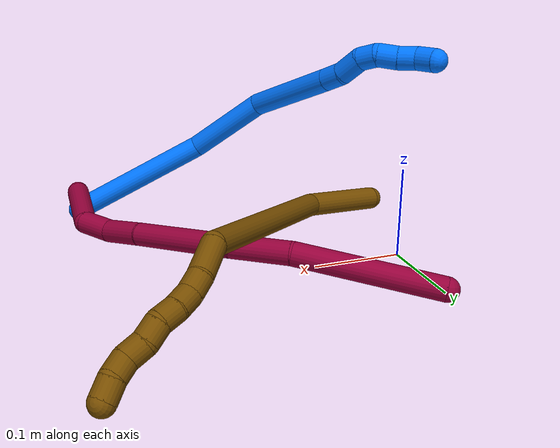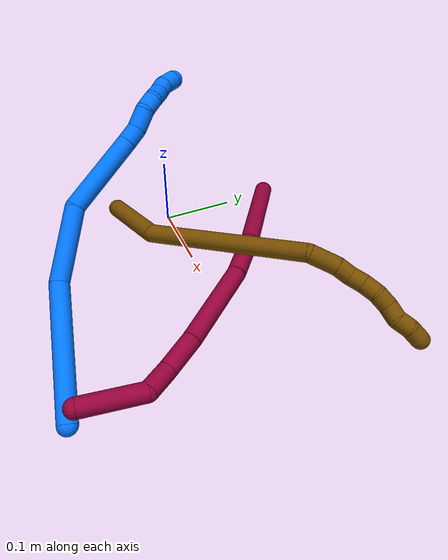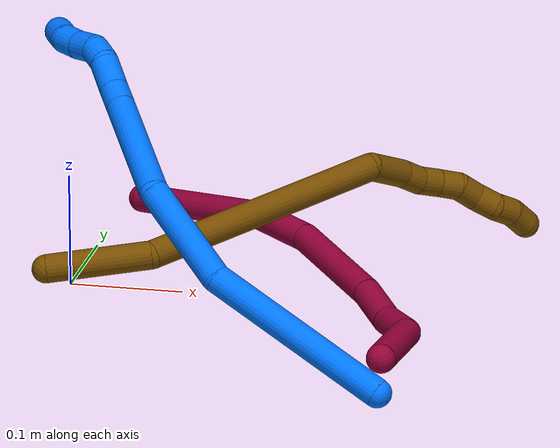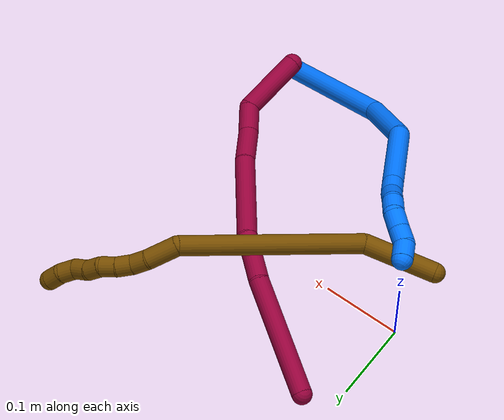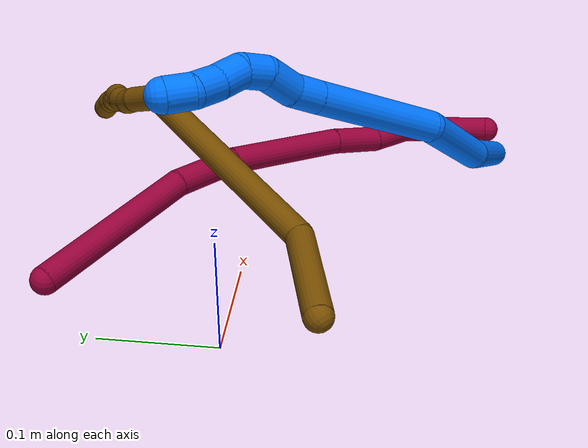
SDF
<sdf version="1.7">
 <world name="default">
  <model name="photoneo_s_sensor">
   <static>1</static>
   <pose>0 0 2 1.57079 1.57079 3.14159</pose>
   <link name="link">
    <inertial><mass>0.1</mass></inertial>
    <sensor name="sensor" type="depth">
     <update_rate>30</update_rate>
     <camera>
      <horizontal_fov>1.22</horizontal_fov>
      <image><width>1920</width><height>1200</height><format>B8G8R8</format></image>
      <clip><near>0.1</near><far>4</far></clip>
      <depth_camera><output>points</output></depth_camera>
     </camera>
     <plugin name="camera_plugin" filename="libgazebo_ros_depth_camera.so">
      <baseline>0.2</baseline>
      <alwaysOn>1</alwaysOn>
      <updateRate>0.0</updateRate>
      <cameraName>camera_ir</cameraName>
      <imageTopicName>/camera/color/image_raw</imageTopicName>
      <cameraInfoTopicName>/camera/color/camera_info</cameraInfoTopicName>
      <depthImageTopicName>/camera/depth/image_raw</depthImageTopicName>
      <depthImageCameraInfoTopicName>/camera/depth/camera_info</depthImageCameraInfoTopicName>
      <pointCloudTopicName>/camera/depth/points</pointCloudTopicName>
      <frameName>fr_optical</frameName>
      <pointCloudCutoff>0.1</pointCloudCutoff>
      <pointCloudCutoffMax>2.0</pointCloudCutoffMax>
      <distortionK1>0</distortionK1>
      <distortionK2>0</distortionK2>
      <distortionK3>0</distortionK3>
      <distortionT1>0</distortionT1>
      <distortionT2>0</distortionT2>
      <CxPrime>0</CxPrime>
      <Cx>0</Cx>
      <Cy>0</Cy>
      <focalLength>0</focalLength>
      <hackBaseline>0</hackBaseline>
     </plugin>
    </sensor>
   </link>
  </model>
  <model name="bin">
   <static>1</static>
   <link name="bottom">
    <collision name="collision-bottom">
     <pose>0 0 -0.01 0 -0 0</pose>
     <geometry><box><size>0.8 0.6 0.02</size></box></geometry>
     <surface>
      <friction><ode><mu>100</mu><mu2>100</mu2></ode></friction>
      <contact><collide_bitmask>65535</collide_bitmask></contact>
     </surface>
    </collision>
   </link>
   <link name="west_wall">
    <collision name="collision-west_wall">
     <pose>-0.41 0 0.1 0 -0 0</pose>
     <geometry><box><size>0.02 0.6 0.2</size></box></geometry>
     <surface>
      <friction><ode><mu>100</mu><mu2>100</mu2></ode></friction>
      <contact><collide_bitmask>65535</collide_bitmask></contact>
     </surface>
    </collision>
   </link>
   <link name="east_wall">
    <collision name="collision-east_wall">
     <pose>0.41 0 0.1 0 -0 0</pose>
     <geometry><box><size>0.02 0.6 0.2</size></box></geometry>
     <surface>
      <friction><ode><mu>100</mu><mu2>100</mu2></ode></friction>
      <contact><collide_bitmask>65535</collide_bitmask></contact>
     </surface>
    </collision>
   </link>
   <link name="south_wall">
    <collision name="collision-south_wall">
     <pose>0 -0.31 0.1 0 -0 0</pose>
     <geometry><box><size>0.8 0.02 0.2</size></box></geometry>
     <surface>
      <friction><ode><mu>100</mu><mu2>100</mu2></ode></friction>
      <contact><collide_bitmask>65535</collide_bitmask></contact>
     </surface>
    </collision>
   </link>
   <link name="north_wall">
    <collision name="collision-north_wall">
     <pose>0 0.31 0.1 0 -0 0</pose>
     <geometry><box><size>0.8 0.02 0.2</size></box></geometry>
     <surface>
      <friction><ode><mu>100</mu><mu2>100</mu2></ode></friction>
      <contact><collide_bitmask>65535</collide_bitmask></contact>
     </surface>
    </collision>
   </link>
  </model>
  <model name="8">
   <static>0</static>
   <link name="8">
    <collision name="collision-cylinder-e_1_1_4">
     <pose>0.013889 0.036596 -0.012509 -1.90015 0.344769 -0.477732</pose>
     <geometry><cylinder><radius>0.0125</radius><length>0.082186</length></cylinder></geometry>
     <surface>
      <friction><ode><mu>1.16</mu><mu2>1.16</mu2><slip1>0</slip1><slip2>0</slip2></ode></friction>
      <contact><ode><kp>1e+06</kp><kd>1</kd><max_vel>0</max_vel><min_depth>0.001</min_depth></ode></contact>
     </surface>
    </collision>
    <visual name="visual-cylinder-e_1_1_4">
     <pose>0.013889 0.036596 -0.012509 -1.90015 0.344769 -0.477732</pose>
     <geometry><cylinder><radius>0.0125</radius><length>0.082186</length></cylinder></geometry>
     <material><ambient>0.584314 0 0.227451 1</ambient></material>
    </visual>
    <collision name="collision-cylinder-e_2_4_5">
     <pose>0.022009 0.091104 -0.026834 -1.67186 -0.310053 0.342473</pose>
     <geometry><cylinder><radius>0.0125</radius><length>0.037811</length></cylinder></geometry>
     <surface>
      <friction><ode><mu>1.16</mu><mu2>1.16</mu2><slip1>0</slip1><slip2>0</slip2></ode></friction>
      <contact><ode><kp>1e+06</kp><kd>1</kd><max_vel>0</max_vel><min_depth>0.001</min_depth></ode></contact>
     </surface>
    </collision>
    <visual name="visual-cylinder-e_2_4_5">
     <pose>0.022009 0.091104 -0.026834 -1.67186 -0.310053 0.342473</pose>
     <geometry><cylinder><radius>0.0125</radius><length>0.037811</length></cylinder></geometry>
     <material><ambient>0.584314 0 0.227451 1</ambient></material>
    </visual>
    <collision name="collision-cylinder-e_3_5_6">
     <pose>0.011685 0.132447 -0.026312 -1.4713 -0.191104 0.173072</pose>
     <geometry><cylinder><radius>0.0125</radius><length>0.047968</length></cylinder></geometry>
     <surface>
      <friction><ode><mu>1.16</mu><mu2>1.16</mu2><slip1>0</slip1><slip2>0</slip2></ode></friction>
      <contact><ode><kp>1e+06</kp><kd>1</kd><max_vel>0</max_vel><min_depth>0.001</min_depth></ode></contact>
     </surface>
    </collision>
    <visual name="visual-cylinder-e_3_5_6">
     <pose>0.011685 0.132447 -0.026312 -1.4713 -0.191104 0.173072</pose>
     <geometry><cylinder><radius>0.0125</radius><length>0.047968</length></cylinder></geometry>
     <material><ambient>0.584314 0 0.227451 1</ambient></material>
    </visual>
    <collision name="collision-cylinder-e_4_6_7">
     <pose>-0.011047 0.210823 -0.020133 -1.50102 -0.318755 0.297582</pose>
     <geometry><cylinder><radius>0.0125</radius><length>0.116</length></cylinder></geometry>
     <surface>
      <friction><ode><mu>1.16</mu><mu2>1.16</mu2><slip1>0</slip1><slip2>0</slip2></ode></friction>
      <contact><ode><kp>1e+06</kp><kd>1</kd><max_vel>0</max_vel><min_depth>0.001</min_depth></ode></contact>
     </surface>
    </collision>
    <visual name="visual-cylinder-e_4_6_7">
     <pose>-0.011047 0.210823 -0.020133 -1.50102 -0.318755 0.297582</pose>
     <geometry><cylinder><radius>0.0125</radius><length>0.116</length></cylinder></geometry>
     <material><ambient>0.584314 0 0.227451 1</ambient></material>
    </visual>
    <collision name="collision-cylinder-e_5_7_8">
     <pose>-0.045552 0.29372 -0.014613 -1.5108 -0.52789 0.498424</pose>
     <geometry><cylinder><radius>0.0125</radius><length>0.064833</length></cylinder></geometry>
     <surface>
      <friction><ode><mu>1.16</mu><mu2>1.16</mu2><slip1>0</slip1><slip2>0</slip2></ode></friction>
      <contact><ode><kp>1e+06</kp><kd>1</kd><max_vel>0</max_vel><min_depth>0.001</min_depth></ode></contact>
     </surface>
    </collision>
    <visual name="visual-cylinder-e_5_7_8">
     <pose>-0.045552 0.29372 -0.014613 -1.5108 -0.52789 0.498424</pose>
     <geometry><cylinder><radius>0.0125</radius><length>0.064833</length></cylinder></geometry>
     <material><ambient>0.584314 0 0.227451 1</ambient></material>
    </visual>
    <collision name="collision-cylinder-e_6_8_2">
     <pose>-0.110083 0.37958 -0.01917 -1.67806 -0.691373 0.762756</pose>
     <geometry><cylinder><radius>0.0125</radius><length>0.151202</length></cylinder></geometry>
     <surface>
      <friction><ode><mu>1.16</mu><mu2>1.16</mu2><slip1>0</slip1><slip2>0</slip2></ode></friction>
      <contact><ode><kp>1e+06</kp><kd>1</kd><max_vel>0</max_vel><min_depth>0.001</min_depth></ode></contact>
     </surface>
    </collision>
    <visual name="visual-cylinder-e_6_8_2">
     <pose>-0.110083 0.37958 -0.01917 -1.67806 -0.691373 0.762756</pose>
     <geometry><cylinder><radius>0.0125</radius><length>0.151202</length></cylinder></geometry>
     <material><ambient>0.584314 0 0.227451 1</ambient></material>
    </visual>
    <collision name="collision-sphere-2">
     <pose>-0.158286 0.437486 -0.025405 0 -0 0</pose>
     <geometry><sphere><radius>0.0125</radius></sphere></geometry>
     <surface>
      <friction><ode><mu>1.16</mu><mu2>1.16</mu2><slip1>0</slip1><slip2>0</slip2></ode></friction>
      <contact><ode><kp>1e+06</kp><kd>1</kd><max_vel>0</max_vel><min_depth>0.001</min_depth></ode></contact>
     </surface>
    </collision>
    <visual name="visual-sphere-2">
     <pose>-0.158286 0.437486 -0.025405 0 -0 0</pose>
     <geometry><sphere><radius>0.0125</radius></sphere></geometry>
     <material><ambient>0.584314 0 0.227451 1</ambient></material>
    </visual>
    <collision name="collision-sphere-4">
     <pose>0.027777 0.073192 -0.025018 0 -0 0</pose>
     <geometry><sphere><radius>0.0125</radius></sphere></geometry>
     <surface>
      <friction><ode><mu>1.16</mu><mu2>1.16</mu2><slip1>0</slip1><slip2>0</slip2></ode></friction>
      <contact><ode><kp>1e+06</kp><kd>1</kd><max_vel>0</max_vel><min_depth>0.001</min_depth></ode></contact>
     </surface>
    </collision>
    <visual name="visual-sphere-4">
     <pose>0.027777 0.073192 -0.025018 0 -0 0</pose>
     <geometry><sphere><radius>0.0125</radius></sphere></geometry>
     <material><ambient>0.584314 0 0.227451 1</ambient></material>
    </visual>
    <collision name="collision-sphere-1">
     <geometry><sphere><radius>0.0125</radius></sphere></geometry>
     <surface>
      <friction><ode><mu>1.16</mu><mu2>1.16</mu2><slip1>0</slip1><slip2>0</slip2></ode></friction>
      <contact><ode><kp>1e+06</kp><kd>1</kd><max_vel>0</max_vel><min_depth>0.001</min_depth></ode></contact>
     </surface>
    </collision>
    <visual name="visual-sphere-1">
     <geometry><sphere><radius>0.0125</radius></sphere></geometry>
     <material><ambient>0.584314 0 0.227451 1</ambient></material>
    </visual>
    <collision name="collision-sphere-8">
     <pose>-0.06188 0.321674 -0.012934 0 -0 0</pose>
     <geometry><sphere><radius>0.0125</radius></sphere></geometry>
     <surface>
      <friction><ode><mu>1.16</mu><mu2>1.16</mu2><slip1>0</slip1><slip2>0</slip2></ode></friction>
      <contact><ode><kp>1e+06</kp><kd>1</kd><max_vel>0</max_vel><min_depth>0.001</min_depth></ode></contact>
     </surface>
    </collision>
    <visual name="visual-sphere-8">
     <pose>-0.06188 0.321674 -0.012934 0 -0 0</pose>
     <geometry><sphere><radius>0.0125</radius></sphere></geometry>
     <material><ambient>0.584314 0 0.227451 1</ambient></material>
    </visual>
    <collision name="collision-sphere-5">
     <pose>0.016241 0.109016 -0.02865 0 -0 0</pose>
     <geometry><sphere><radius>0.0125</radius></sphere></geometry>
     <surface>
      <friction><ode><mu>1.16</mu><mu2>1.16</mu2><slip1>0</slip1><slip2>0</slip2></ode></friction>
      <contact><ode><kp>1e+06</kp><kd>1</kd><max_vel>0</max_vel><min_depth>0.001</min_depth></ode></contact>
     </surface>
    </collision>
    <visual name="visual-sphere-5">
     <pose>0.016241 0.109016 -0.02865 0 -0 0</pose>
     <geometry><sphere><radius>0.0125</radius></sphere></geometry>
     <material><ambient>0.584314 0 0.227451 1</ambient></material>
    </visual>
    <collision name="collision-sphere-6">
     <pose>0.00713 0.155878 -0.023973 0 -0 0</pose>
     <geometry><sphere><radius>0.0125</radius></sphere></geometry>
     <surface>
      <friction><ode><mu>1.16</mu><mu2>1.16</mu2><slip1>0</slip1><slip2>0</slip2></ode></friction>
      <contact><ode><kp>1e+06</kp><kd>1</kd><max_vel>0</max_vel><min_depth>0.001</min_depth></ode></contact>
     </surface>
    </collision>
    <visual name="visual-sphere-6">
     <pose>0.00713 0.155878 -0.023973 0 -0 0</pose>
     <geometry><sphere><radius>0.0125</radius></sphere></geometry>
     <material><ambient>0.584314 0 0.227451 1</ambient></material>
    </visual>
    <collision name="collision-sphere-7">
     <pose>-0.029223 0.265767 -0.016293 0 -0 0</pose>
     <geometry><sphere><radius>0.0125</radius></sphere></geometry>
     <surface>
      <friction><ode><mu>1.16</mu><mu2>1.16</mu2><slip1>0</slip1><slip2>0</slip2></ode></friction>
      <contact><ode><kp>1e+06</kp><kd>1</kd><max_vel>0</max_vel><min_depth>0.001</min_depth></ode></contact>
     </surface>
    </collision>
    <visual name="visual-sphere-7">
     <pose>-0.029223 0.265767 -0.016293 0 -0 0</pose>
     <geometry><sphere><radius>0.0125</radius></sphere></geometry>
     <material><ambient>0.584314 0 0.227451 1</ambient></material>
    </visual>
    <inertial>
     <pose>-0.03669 0.227394 -0.018972 0 -0 0</pose>
     <mass>0.5</mass>
     <inertia>
      <ixx>0.000537</ixx>
      <ixy>0</ixy>
      <ixz>0</ixz>
      <iyy>0.00035</iyy>
      <iyz>0</iyz>
      <izz>-0.000207</izz>
     </inertia>
    </inertial>
   </link>
   <pose>0.317647 -0.219394 0.037915 0.135093 -0.254471 0.309386</pose>
  </model>
  <model name="12">
   <static>0</static>
   <link name="12">
    <collision name="collision-cylinder-e_1_1_4">
     <pose>0.028012 -0.000279 0.03624 0.007696 0.658019 0.002628</pose>
     <geometry><cylinder><radius>0.0125</radius><length>0.091609</length></cylinder></geometry>
     <surface>
      <friction><ode><mu>1.16</mu><mu2>1.16</mu2><slip1>0</slip1><slip2>0</slip2></ode></friction>
      <contact><ode><kp>1e+06</kp><kd>1</kd><max_vel>0</max_vel><min_depth>0.001</min_depth></ode></contact>
     </surface>
    </collision>
    <visual name="visual-cylinder-e_1_1_4">
     <pose>0.028012 -0.000279 0.03624 0.007696 0.658019 0.002628</pose>
     <geometry><cylinder><radius>0.0125</radius><length>0.091609</length></cylinder></geometry>
     <material><ambient>0.466667 0.301961 0 1</ambient></material>
    </visual>
    <collision name="collision-cylinder-e_2_4_5">
     <pose>0.082489 0.031362 0.178892 -0.291426 0.233856 -0.034473</pose>
     <geometry><cylinder><radius>0.0125</radius><length>0.228412</length></cylinder></geometry>
     <surface>
      <friction><ode><mu>1.16</mu><mu2>1.16</mu2><slip1>0</slip1><slip2>0</slip2></ode></friction>
      <contact><ode><kp>1e+06</kp><kd>1</kd><max_vel>0</max_vel><min_depth>0.001</min_depth></ode></contact>
     </surface>
    </collision>
    <visual name="visual-cylinder-e_2_4_5">
     <pose>0.082489 0.031362 0.178892 -0.291426 0.233856 -0.034473</pose>
     <geometry><cylinder><radius>0.0125</radius><length>0.228412</length></cylinder></geometry>
     <material><ambient>0.466667 0.301961 0 1</ambient></material>
    </visual>
    <collision name="collision-cylinder-e_3_5_6">
     <pose>0.115857 0.077706 0.297211 -0.880752 0.353616 -0.168</pose>
     <geometry><cylinder><radius>0.0125</radius><length>0.039872</length></cylinder></geometry>
     <surface>
      <friction><ode><mu>1.16</mu><mu2>1.16</mu2><slip1>0</slip1><slip2>0</slip2></ode></friction>
      <contact><ode><kp>1e+06</kp><kd>1</kd><max_vel>0</max_vel><min_depth>0.001</min_depth></ode></contact>
     </surface>
    </collision>
    <visual name="visual-cylinder-e_3_5_6">
     <pose>0.115857 0.077706 0.297211 -0.880752 0.353616 -0.168</pose>
     <geometry><cylinder><radius>0.0125</radius><length>0.039872</length></cylinder></geometry>
     <material><ambient>0.466667 0.301961 0 1</ambient></material>
    </visual>
    <collision name="collision-cylinder-e_4_6_7">
     <pose>0.128182 0.098869 0.314234 -0.92123 0.569784 -0.288621</pose>
     <geometry><cylinder><radius>0.0125</radius><length>0.020099</length></cylinder></geometry>
     <surface>
      <friction><ode><mu>1.16</mu><mu2>1.16</mu2><slip1>0</slip1><slip2>0</slip2></ode></friction>
      <contact><ode><kp>1e+06</kp><kd>1</kd><max_vel>0</max_vel><min_depth>0.001</min_depth></ode></contact>
     </surface>
    </collision>
    <visual name="visual-cylinder-e_4_6_7">
     <pose>0.128182 0.098869 0.314234 -0.92123 0.569784 -0.288621</pose>
     <geometry><cylinder><radius>0.0125</radius><length>0.020099</length></cylinder></geometry>
     <material><ambient>0.466667 0.301961 0 1</ambient></material>
    </visual>
    <collision name="collision-cylinder-e_5_7_8">
     <pose>0.138771 0.110796 0.326162 -0.651172 0.543053 -0.187427</pose>
     <geometry><cylinder><radius>0.0125</radius><length>0.02</length></cylinder></geometry>
     <surface>
      <friction><ode><mu>1.16</mu><mu2>1.16</mu2><slip1>0</slip1><slip2>0</slip2></ode></friction>
      <contact><ode><kp>1e+06</kp><kd>1</kd><max_vel>0</max_vel><min_depth>0.001</min_depth></ode></contact>
     </surface>
    </collision>
    <visual name="visual-cylinder-e_5_7_8">
     <pose>0.138771 0.110796 0.326162 -0.651172 0.543053 -0.187427</pose>
     <geometry><cylinder><radius>0.0125</radius><length>0.02</length></cylinder></geometry>
     <material><ambient>0.466667 0.301961 0 1</ambient></material>
    </visual>
    <collision name="collision-cylinder-e_6_8_9">
     <pose>0.150364 0.119938 0.339538 -0.541853 0.697751 -0.201387</pose>
     <geometry><cylinder><radius>0.0125</radius><length>0.020003</length></cylinder></geometry>
     <surface>
      <friction><ode><mu>1.16</mu><mu2>1.16</mu2><slip1>0</slip1><slip2>0</slip2></ode></friction>
      <contact><ode><kp>1e+06</kp><kd>1</kd><max_vel>0</max_vel><min_depth>0.001</min_depth></ode></contact>
     </surface>
    </collision>
    <visual name="visual-cylinder-e_6_8_9">
     <pose>0.150364 0.119938 0.339538 -0.541853 0.697751 -0.201387</pose>
     <geometry><cylinder><radius>0.0125</radius><length>0.020003</length></cylinder></geometry>
     <material><ambient>0.466667 0.301961 0 1</ambient></material>
    </visual>
    <collision name="collision-cylinder-e_7_9_10">
     <pose>0.163537 0.130249 0.349857 -1.03756 0.740378 -0.436098</pose>
     <geometry><cylinder><radius>0.0125</radius><length>0.020004</length></cylinder></geometry>
     <surface>
      <friction><ode><mu>1.16</mu><mu2>1.16</mu2><slip1>0</slip1><slip2>0</slip2></ode></friction>
      <contact><ode><kp>1e+06</kp><kd>1</kd><max_vel>0</max_vel><min_depth>0.001</min_depth></ode></contact>
     </surface>
    </collision>
    <visual name="visual-cylinder-e_7_9_10">
     <pose>0.163537 0.130249 0.349857 -1.03756 0.740378 -0.436098</pose>
     <geometry><cylinder><radius>0.0125</radius><length>0.020004</length></cylinder></geometry>
     <material><ambient>0.466667 0.301961 0 1</ambient></material>
    </visual>
    <collision name="collision-cylinder-e_8_10_11">
     <pose>0.178785 0.140289 0.357376 -0.774194 1.01618 -0.446456</pose>
     <geometry><cylinder><radius>0.0125</radius><length>0.02</length></cylinder></geometry>
     <surface>
      <friction><ode><mu>1.16</mu><mu2>1.16</mu2><slip1>0</slip1><slip2>0</slip2></ode></friction>
      <contact><ode><kp>1e+06</kp><kd>1</kd><max_vel>0</max_vel><min_depth>0.001</min_depth></ode></contact>
     </surface>
    </collision>
    <visual name="visual-cylinder-e_8_10_11">
     <pose>0.178785 0.140289 0.357376 -0.774194 1.01618 -0.446456</pose>
     <geometry><cylinder><radius>0.0125</radius><length>0.02</length></cylinder></geometry>
     <material><ambient>0.466667 0.301961 0 1</ambient></material>
    </visual>
    <collision name="collision-cylinder-e_9_11_12">
     <pose>0.192603 0.150429 0.366622 -0.867001 0.560525 -0.2649</pose>
     <geometry><cylinder><radius>0.0125</radius><length>0.02</length></cylinder></geometry>
     <surface>
      <friction><ode><mu>1.16</mu><mu2>1.16</mu2><slip1>0</slip1><slip2>0</slip2></ode></friction>
      <contact><ode><kp>1e+06</kp><kd>1</kd><max_vel>0</max_vel><min_depth>0.001</min_depth></ode></contact>
     </surface>
    </collision>
    <visual name="visual-cylinder-e_9_11_12">
     <pose>0.192603 0.150429 0.366622 -0.867001 0.560525 -0.2649</pose>
     <geometry><cylinder><radius>0.0125</radius><length>0.02</length></cylinder></geometry>
     <material><ambient>0.466667 0.301961 0 1</ambient></material>
    </visual>
    <collision name="collision-cylinder-e_10_12_2">
     <pose>0.203684 0.16456 0.374912 -1.2199 0.614344 -0.436307</pose>
     <geometry><cylinder><radius>0.0125</radius><length>0.020001</length></cylinder></geometry>
     <surface>
      <friction><ode><mu>1.16</mu><mu2>1.16</mu2><slip1>0</slip1><slip2>0</slip2></ode></friction>
      <contact><ode><kp>1e+06</kp><kd>1</kd><max_vel>0</max_vel><min_depth>0.001</min_depth></ode></contact>
     </surface>
    </collision>
    <visual name="visual-cylinder-e_10_12_2">
     <pose>0.203684 0.16456 0.374912 -1.2199 0.614344 -0.436307</pose>
     <geometry><cylinder><radius>0.0125</radius><length>0.020001</length></cylinder></geometry>
     <material><ambient>0.466667 0.301961 0 1</ambient></material>
    </visual>
    <collision name="collision-sphere-2">
     <pose>0.209448 0.172234 0.377721 0 -0 0</pose>
     <geometry><sphere><radius>0.0125</radius></sphere></geometry>
     <surface>
      <friction><ode><mu>1.16</mu><mu2>1.16</mu2><slip1>0</slip1><slip2>0</slip2></ode></friction>
      <contact><ode><kp>1e+06</kp><kd>1</kd><max_vel>0</max_vel><min_depth>0.001</min_depth></ode></contact>
     </surface>
    </collision>
    <visual name="visual-sphere-2">
     <pose>0.209448 0.172234 0.377721 0 -0 0</pose>
     <geometry><sphere><radius>0.0125</radius></sphere></geometry>
     <material><ambient>0.466667 0.301961 0 1</ambient></material>
    </visual>
    <collision name="collision-sphere-12">
     <pose>0.197919 0.156886 0.372103 0 -0 0</pose>
     <geometry><sphere><radius>0.0125</radius></sphere></geometry>
     <surface>
      <friction><ode><mu>1.16</mu><mu2>1.16</mu2><slip1>0</slip1><slip2>0</slip2></ode></friction>
      <contact><ode><kp>1e+06</kp><kd>1</kd><max_vel>0</max_vel><min_depth>0.001</min_depth></ode></contact>
     </surface>
    </collision>
    <visual name="visual-sphere-12">
     <pose>0.197919 0.156886 0.372103 0 -0 0</pose>
     <geometry><sphere><radius>0.0125</radius></sphere></geometry>
     <material><ambient>0.466667 0.301961 0 1</ambient></material>
    </visual>
    <collision name="collision-sphere-11">
     <pose>0.187287 0.143971 0.361141 0 -0 0</pose>
     <geometry><sphere><radius>0.0125</radius></sphere></geometry>
     <surface>
      <friction><ode><mu>1.16</mu><mu2>1.16</mu2><slip1>0</slip1><slip2>0</slip2></ode></friction>
      <contact><ode><kp>1e+06</kp><kd>1</kd><max_vel>0</max_vel><min_depth>0.001</min_depth></ode></contact>
     </surface>
    </collision>
    <visual name="visual-sphere-11">
     <pose>0.187287 0.143971 0.361141 0 -0 0</pose>
     <geometry><sphere><radius>0.0125</radius></sphere></geometry>
     <material><ambient>0.466667 0.301961 0 1</ambient></material>
    </visual>
    <collision name="collision-sphere-10">
     <pose>0.170284 0.136608 0.35361 0 -0 0</pose>
     <geometry><sphere><radius>0.0125</radius></sphere></geometry>
     <surface>
      <friction><ode><mu>1.16</mu><mu2>1.16</mu2><slip1>0</slip1><slip2>0</slip2></ode></friction>
      <contact><ode><kp>1e+06</kp><kd>1</kd><max_vel>0</max_vel><min_depth>0.001</min_depth></ode></contact>
     </surface>
    </collision>
    <visual name="visual-sphere-10">
     <pose>0.170284 0.136608 0.35361 0 -0 0</pose>
     <geometry><sphere><radius>0.0125</radius></sphere></geometry>
     <material><ambient>0.466667 0.301961 0 1</ambient></material>
    </visual>
    <collision name="collision-sphere-9">
     <pose>0.15679 0.123891 0.346104 0 -0 0</pose>
     <geometry><sphere><radius>0.0125</radius></sphere></geometry>
     <surface>
      <friction><ode><mu>1.16</mu><mu2>1.16</mu2><slip1>0</slip1><slip2>0</slip2></ode></friction>
      <contact><ode><kp>1e+06</kp><kd>1</kd><max_vel>0</max_vel><min_depth>0.001</min_depth></ode></contact>
     </surface>
    </collision>
    <visual name="visual-sphere-9">
     <pose>0.15679 0.123891 0.346104 0 -0 0</pose>
     <geometry><sphere><radius>0.0125</radius></sphere></geometry>
     <material><ambient>0.466667 0.301961 0 1</ambient></material>
    </visual>
    <collision name="collision-sphere-4">
     <pose>0.056024 -0.000558 0.07248 0 -0 0</pose>
     <geometry><sphere><radius>0.0125</radius></sphere></geometry>
     <surface>
      <friction><ode><mu>1.16</mu><mu2>1.16</mu2><slip1>0</slip1><slip2>0</slip2></ode></friction>
      <contact><ode><kp>1e+06</kp><kd>1</kd><max_vel>0</max_vel><min_depth>0.001</min_depth></ode></contact>
     </surface>
    </collision>
    <visual name="visual-sphere-4">
     <pose>0.056024 -0.000558 0.07248 0 -0 0</pose>
     <geometry><sphere><radius>0.0125</radius></sphere></geometry>
     <material><ambient>0.466667 0.301961 0 1</ambient></material>
    </visual>
    <collision name="collision-sphere-1">
     <geometry><sphere><radius>0.0125</radius></sphere></geometry>
     <surface>
      <friction><ode><mu>1.16</mu><mu2>1.16</mu2><slip1>0</slip1><slip2>0</slip2></ode></friction>
      <contact><ode><kp>1e+06</kp><kd>1</kd><max_vel>0</max_vel><min_depth>0.001</min_depth></ode></contact>
     </surface>
    </collision>
    <visual name="visual-sphere-1">
     <geometry><sphere><radius>0.0125</radius></sphere></geometry>
     <material><ambient>0.466667 0.301961 0 1</ambient></material>
    </visual>
    <collision name="collision-sphere-8">
     <pose>0.143938 0.115986 0.332971 0 -0 0</pose>
     <geometry><sphere><radius>0.0125</radius></sphere></geometry>
     <surface>
      <friction><ode><mu>1.16</mu><mu2>1.16</mu2><slip1>0</slip1><slip2>0</slip2></ode></friction>
      <contact><ode><kp>1e+06</kp><kd>1</kd><max_vel>0</max_vel><min_depth>0.001</min_depth></ode></contact>
     </surface>
    </collision>
    <visual name="visual-sphere-8">
     <pose>0.143938 0.115986 0.332971 0 -0 0</pose>
     <geometry><sphere><radius>0.0125</radius></sphere></geometry>
     <material><ambient>0.466667 0.301961 0 1</ambient></material>
    </visual>
    <collision name="collision-sphere-5">
     <pose>0.108954 0.063283 0.285305 0 -0 0</pose>
     <geometry><sphere><radius>0.0125</radius></sphere></geometry>
     <surface>
      <friction><ode><mu>1.16</mu><mu2>1.16</mu2><slip1>0</slip1><slip2>0</slip2></ode></friction>
      <contact><ode><kp>1e+06</kp><kd>1</kd><max_vel>0</max_vel><min_depth>0.001</min_depth></ode></contact>
     </surface>
    </collision>
    <visual name="visual-sphere-5">
     <pose>0.108954 0.063283 0.285305 0 -0 0</pose>
     <geometry><sphere><radius>0.0125</radius></sphere></geometry>
     <material><ambient>0.466667 0.301961 0 1</ambient></material>
    </visual>
    <collision name="collision-sphere-6">
     <pose>0.122761 0.09213 0.309116 0 -0 0</pose>
     <geometry><sphere><radius>0.0125</radius></sphere></geometry>
     <surface>
      <friction><ode><mu>1.16</mu><mu2>1.16</mu2><slip1>0</slip1><slip2>0</slip2></ode></friction>
      <contact><ode><kp>1e+06</kp><kd>1</kd><max_vel>0</max_vel><min_depth>0.001</min_depth></ode></contact>
     </surface>
    </collision>
    <visual name="visual-sphere-6">
     <pose>0.122761 0.09213 0.309116 0 -0 0</pose>
     <geometry><sphere><radius>0.0125</radius></sphere></geometry>
     <material><ambient>0.466667 0.301961 0 1</ambient></material>
    </visual>
    <collision name="collision-sphere-7">
     <pose>0.133603 0.105607 0.319352 0 -0 0</pose>
     <geometry><sphere><radius>0.0125</radius></sphere></geometry>
     <surface>
      <friction><ode><mu>1.16</mu><mu2>1.16</mu2><slip1>0</slip1><slip2>0</slip2></ode></friction>
      <contact><ode><kp>1e+06</kp><kd>1</kd><max_vel>0</max_vel><min_depth>0.001</min_depth></ode></contact>
     </surface>
    </collision>
    <visual name="visual-sphere-7">
     <pose>0.133603 0.105607 0.319352 0 -0 0</pose>
     <geometry><sphere><radius>0.0125</radius></sphere></geometry>
     <material><ambient>0.466667 0.301961 0 1</ambient></material>
    </visual>
    <inertial>
     <pose>0.098319 0.057099 0.209279 0 -0 0</pose>
     <mass>0.5</mass>
     <inertia>
      <ixx>0.001021</ixx>
      <ixy>0</ixy>
      <ixz>0</ixz>
      <iyy>0.001018</iyy>
      <iyz>0</iyz>
      <izz>-0.000543</izz>
     </inertia>
    </inertial>
   </link>
   <pose>-0.002393 -0.076104 0.041146 -0.942057 0.504183 -0.432781</pose>
  </model>
  <model name="14">
   <static>0</static>
   <link name="14">
    <collision name="collision-cylinder-e_1_1_4">
     <pose>-0.07381 -0.009579 -0.037389 2.89079 -1.08899 -2.73109</pose>
     <geometry><cylinder><radius>0.0125</radius><length>0.166585</length></cylinder></geometry>
     <surface>
      <friction><ode><mu>1.16</mu><mu2>1.16</mu2><slip1>0</slip1><slip2>0</slip2></ode></friction>
      <contact><ode><kp>1e+06</kp><kd>1</kd><max_vel>0</max_vel><min_depth>0.001</min_depth></ode></contact>
     </surface>
    </collision>
    <visual name="visual-cylinder-e_1_1_4">
     <pose>-0.07381 -0.009579 -0.037389 2.89079 -1.08899 -2.73109</pose>
     <geometry><cylinder><radius>0.0125</radius><length>0.166585</length></cylinder></geometry>
     <material><ambient>0 0.462745 1 1</ambient></material>
    </visual>
    <collision name="collision-cylinder-e_2_4_5">
     <pose>-0.184245 -0.011769 -0.10399 -2.89384 -0.882347 2.62597</pose>
     <geometry><cylinder><radius>0.0125</radius><length>0.094853</length></cylinder></geometry>
     <surface>
      <friction><ode><mu>1.16</mu><mu2>1.16</mu2><slip1>0</slip1><slip2>0</slip2></ode></friction>
      <contact><ode><kp>1e+06</kp><kd>1</kd><max_vel>0</max_vel><min_depth>0.001</min_depth></ode></contact>
     </surface>
    </collision>
    <visual name="visual-cylinder-e_2_4_5">
     <pose>-0.184245 -0.011769 -0.10399 -2.89384 -0.882347 2.62597</pose>
     <geometry><cylinder><radius>0.0125</radius><length>0.094853</length></cylinder></geometry>
     <material><ambient>0 0.462745 1 1</ambient></material>
    </visual>
    <collision name="collision-cylinder-e_3_5_6">
     <pose>-0.24323 0.006206 -0.180396 -2.92094 -0.433055 2.20859</pose>
     <geometry><cylinder><radius>0.0125</radius><length>0.106571</length></cylinder></geometry>
     <surface>
      <friction><ode><mu>1.16</mu><mu2>1.16</mu2><slip1>0</slip1><slip2>0</slip2></ode></friction>
      <contact><ode><kp>1e+06</kp><kd>1</kd><max_vel>0</max_vel><min_depth>0.001</min_depth></ode></contact>
     </surface>
    </collision>
    <visual name="visual-cylinder-e_3_5_6">
     <pose>-0.24323 0.006206 -0.180396 -2.92094 -0.433055 2.20859</pose>
     <geometry><cylinder><radius>0.0125</radius><length>0.106571</length></cylinder></geometry>
     <material><ambient>0 0.462745 1 1</ambient></material>
    </visual>
    <collision name="collision-cylinder-e_4_6_7">
     <pose>-0.270464 0.019093 -0.237272 -2.90821 -0.455327 2.20477</pose>
     <geometry><cylinder><radius>0.0125</radius><length>0.022164</length></cylinder></geometry>
     <surface>
      <friction><ode><mu>1.16</mu><mu2>1.16</mu2><slip1>0</slip1><slip2>0</slip2></ode></friction>
      <contact><ode><kp>1e+06</kp><kd>1</kd><max_vel>0</max_vel><min_depth>0.001</min_depth></ode></contact>
     </surface>
    </collision>
    <visual name="visual-cylinder-e_4_6_7">
     <pose>-0.270464 0.019093 -0.237272 -2.90821 -0.455327 2.20477</pose>
     <geometry><cylinder><radius>0.0125</radius><length>0.022164</length></cylinder></geometry>
     <material><ambient>0 0.462745 1 1</ambient></material>
    </visual>
    <collision name="collision-cylinder-e_5_7_8">
     <pose>-0.283802 0.026223 -0.256781 -2.68485 -0.658179 1.94643</pose>
     <geometry><cylinder><radius>0.0125</radius><length>0.027676</length></cylinder></geometry>
     <surface>
      <friction><ode><mu>1.16</mu><mu2>1.16</mu2><slip1>0</slip1><slip2>0</slip2></ode></friction>
      <contact><ode><kp>1e+06</kp><kd>1</kd><max_vel>0</max_vel><min_depth>0.001</min_depth></ode></contact>
     </surface>
    </collision>
    <visual name="visual-cylinder-e_5_7_8">
     <pose>-0.283802 0.026223 -0.256781 -2.68485 -0.658179 1.94643</pose>
     <geometry><cylinder><radius>0.0125</radius><length>0.027676</length></cylinder></geometry>
     <material><ambient>0 0.462745 1 1</ambient></material>
    </visual>
    <collision name="collision-cylinder-e_6_8_9">
     <pose>-0.296949 0.031325 -0.275489 -3.11076 -0.484934 3.01707</pose>
     <geometry><cylinder><radius>0.0125</radius><length>0.020092</length></cylinder></geometry>
     <surface>
      <friction><ode><mu>1.16</mu><mu2>1.16</mu2><slip1>0</slip1><slip2>0</slip2></ode></friction>
      <contact><ode><kp>1e+06</kp><kd>1</kd><max_vel>0</max_vel><min_depth>0.001</min_depth></ode></contact>
     </surface>
    </collision>
    <visual name="visual-cylinder-e_6_8_9">
     <pose>-0.296949 0.031325 -0.275489 -3.11076 -0.484934 3.01707</pose>
     <geometry><cylinder><radius>0.0125</radius><length>0.020092</length></cylinder></geometry>
     <material><ambient>0 0.462745 1 1</ambient></material>
    </visual>
    <collision name="collision-cylinder-e_7_9_10">
     <pose>-0.305887 0.027043 -0.293167 2.66355 -0.405731 -1.40215</pose>
     <geometry><cylinder><radius>0.0125</radius><length>0.021559</length></cylinder></geometry>
     <surface>
      <friction><ode><mu>1.16</mu><mu2>1.16</mu2><slip1>0</slip1><slip2>0</slip2></ode></friction>
      <contact><ode><kp>1e+06</kp><kd>1</kd><max_vel>0</max_vel><min_depth>0.001</min_depth></ode></contact>
     </surface>
    </collision>
    <visual name="visual-cylinder-e_7_9_10">
     <pose>-0.305887 0.027043 -0.293167 2.66355 -0.405731 -1.40215</pose>
     <geometry><cylinder><radius>0.0125</radius><length>0.021559</length></cylinder></geometry>
     <material><ambient>0 0.462745 1 1</ambient></material>
    </visual>
    <collision name="collision-cylinder-e_8_10_11">
     <pose>-0.315002 0.019236 -0.310253 2.76802 -0.499541 -1.86634</pose>
     <geometry><cylinder><radius>0.0125</radius><length>0.020291</length></cylinder></geometry>
     <surface>
      <friction><ode><mu>1.16</mu><mu2>1.16</mu2><slip1>0</slip1><slip2>0</slip2></ode></friction>
      <contact><ode><kp>1e+06</kp><kd>1</kd><max_vel>0</max_vel><min_depth>0.001</min_depth></ode></contact>
     </surface>
    </collision>
    <visual name="visual-cylinder-e_8_10_11">
     <pose>-0.315002 0.019236 -0.310253 2.76802 -0.499541 -1.86634</pose>
     <geometry><cylinder><radius>0.0125</radius><length>0.020291</length></cylinder></geometry>
     <material><ambient>0 0.462745 1 1</ambient></material>
    </visual>
    <collision name="collision-cylinder-e_9_11_2">
     <pose>-0.321673 0.014948 -0.328431 3.037 -0.180202 -2.09138</pose>
     <geometry><cylinder><radius>0.0125</radius><length>0.020209</length></cylinder></geometry>
     <surface>
      <friction><ode><mu>1.16</mu><mu2>1.16</mu2><slip1>0</slip1><slip2>0</slip2></ode></friction>
      <contact><ode><kp>1e+06</kp><kd>1</kd><max_vel>0</max_vel><min_depth>0.001</min_depth></ode></contact>
     </surface>
    </collision>
    <visual name="visual-cylinder-e_9_11_2">
     <pose>-0.321673 0.014948 -0.328431 3.037 -0.180202 -2.09138</pose>
     <geometry><cylinder><radius>0.0125</radius><length>0.020209</length></cylinder></geometry>
     <material><ambient>0 0.462745 1 1</ambient></material>
    </visual>
    <collision name="collision-sphere-2">
     <pose>-0.323484 0.013911 -0.338317 0 -0 0</pose>
     <geometry><sphere><radius>0.0125</radius></sphere></geometry>
     <surface>
      <friction><ode><mu>1.16</mu><mu2>1.16</mu2><slip1>0</slip1><slip2>0</slip2></ode></friction>
      <contact><ode><kp>1e+06</kp><kd>1</kd><max_vel>0</max_vel><min_depth>0.001</min_depth></ode></contact>
     </surface>
    </collision>
    <visual name="visual-sphere-2">
     <pose>-0.323484 0.013911 -0.338317 0 -0 0</pose>
     <geometry><sphere><radius>0.0125</radius></sphere></geometry>
     <material><ambient>0 0.462745 1 1</ambient></material>
    </visual>
    <collision name="collision-sphere-11">
     <pose>-0.319862 0.015986 -0.318544 0 -0 0</pose>
     <geometry><sphere><radius>0.0125</radius></sphere></geometry>
     <surface>
      <friction><ode><mu>1.16</mu><mu2>1.16</mu2><slip1>0</slip1><slip2>0</slip2></ode></friction>
      <contact><ode><kp>1e+06</kp><kd>1</kd><max_vel>0</max_vel><min_depth>0.001</min_depth></ode></contact>
     </surface>
    </collision>
    <visual name="visual-sphere-11">
     <pose>-0.319862 0.015986 -0.318544 0 -0 0</pose>
     <geometry><sphere><radius>0.0125</radius></sphere></geometry>
     <material><ambient>0 0.462745 1 1</ambient></material>
    </visual>
    <collision name="collision-sphere-10">
     <pose>-0.310141 0.022487 -0.301961 0 -0 0</pose>
     <geometry><sphere><radius>0.0125</radius></sphere></geometry>
     <surface>
      <friction><ode><mu>1.16</mu><mu2>1.16</mu2><slip1>0</slip1><slip2>0</slip2></ode></friction>
      <contact><ode><kp>1e+06</kp><kd>1</kd><max_vel>0</max_vel><min_depth>0.001</min_depth></ode></contact>
     </surface>
    </collision>
    <visual name="visual-sphere-10">
     <pose>-0.310141 0.022487 -0.301961 0 -0 0</pose>
     <geometry><sphere><radius>0.0125</radius></sphere></geometry>
     <material><ambient>0 0.462745 1 1</ambient></material>
    </visual>
    <collision name="collision-sphere-9">
     <pose>-0.301632 0.031599 -0.284373 0 -0 0</pose>
     <geometry><sphere><radius>0.0125</radius></sphere></geometry>
     <surface>
      <friction><ode><mu>1.16</mu><mu2>1.16</mu2><slip1>0</slip1><slip2>0</slip2></ode></friction>
      <contact><ode><kp>1e+06</kp><kd>1</kd><max_vel>0</max_vel><min_depth>0.001</min_depth></ode></contact>
     </surface>
    </collision>
    <visual name="visual-sphere-9">
     <pose>-0.301632 0.031599 -0.284373 0 -0 0</pose>
     <geometry><sphere><radius>0.0125</radius></sphere></geometry>
     <material><ambient>0 0.462745 1 1</ambient></material>
    </visual>
    <collision name="collision-sphere-4">
     <pose>-0.14762 -0.019158 -0.074778 0 -0 0</pose>
     <geometry><sphere><radius>0.0125</radius></sphere></geometry>
     <surface>
      <friction><ode><mu>1.16</mu><mu2>1.16</mu2><slip1>0</slip1><slip2>0</slip2></ode></friction>
      <contact><ode><kp>1e+06</kp><kd>1</kd><max_vel>0</max_vel><min_depth>0.001</min_depth></ode></contact>
     </surface>
    </collision>
    <visual name="visual-sphere-4">
     <pose>-0.14762 -0.019158 -0.074778 0 -0 0</pose>
     <geometry><sphere><radius>0.0125</radius></sphere></geometry>
     <material><ambient>0 0.462745 1 1</ambient></material>
    </visual>
    <collision name="collision-sphere-1">
     <geometry><sphere><radius>0.0125</radius></sphere></geometry>
     <surface>
      <friction><ode><mu>1.16</mu><mu2>1.16</mu2><slip1>0</slip1><slip2>0</slip2></ode></friction>
      <contact><ode><kp>1e+06</kp><kd>1</kd><max_vel>0</max_vel><min_depth>0.001</min_depth></ode></contact>
     </surface>
    </collision>
    <visual name="visual-sphere-1">
     <geometry><sphere><radius>0.0125</radius></sphere></geometry>
     <material><ambient>0 0.462745 1 1</ambient></material>
    </visual>
    <collision name="collision-sphere-8">
     <pose>-0.292266 0.031051 -0.266606 0 -0 0</pose>
     <geometry><sphere><radius>0.0125</radius></sphere></geometry>
     <surface>
      <friction><ode><mu>1.16</mu><mu2>1.16</mu2><slip1>0</slip1><slip2>0</slip2></ode></friction>
      <contact><ode><kp>1e+06</kp><kd>1</kd><max_vel>0</max_vel><min_depth>0.001</min_depth></ode></contact>
     </surface>
    </collision>
    <visual name="visual-sphere-8">
     <pose>-0.292266 0.031051 -0.266606 0 -0 0</pose>
     <geometry><sphere><radius>0.0125</radius></sphere></geometry>
     <material><ambient>0 0.462745 1 1</ambient></material>
    </visual>
    <collision name="collision-sphere-5">
     <pose>-0.220869 -0.00438 -0.133202 0 -0 0</pose>
     <geometry><sphere><radius>0.0125</radius></sphere></geometry>
     <surface>
      <friction><ode><mu>1.16</mu><mu2>1.16</mu2><slip1>0</slip1><slip2>0</slip2></ode></friction>
      <contact><ode><kp>1e+06</kp><kd>1</kd><max_vel>0</max_vel><min_depth>0.001</min_depth></ode></contact>
     </surface>
    </collision>
    <visual name="visual-sphere-5">
     <pose>-0.220869 -0.00438 -0.133202 0 -0 0</pose>
     <geometry><sphere><radius>0.0125</radius></sphere></geometry>
     <material><ambient>0 0.462745 1 1</ambient></material>
    </visual>
    <collision name="collision-sphere-6">
     <pose>-0.265591 0.016792 -0.22759 0 -0 0</pose>
     <geometry><sphere><radius>0.0125</radius></sphere></geometry>
     <surface>
      <friction><ode><mu>1.16</mu><mu2>1.16</mu2><slip1>0</slip1><slip2>0</slip2></ode></friction>
      <contact><ode><kp>1e+06</kp><kd>1</kd><max_vel>0</max_vel><min_depth>0.001</min_depth></ode></contact>
     </surface>
    </collision>
    <visual name="visual-sphere-6">
     <pose>-0.265591 0.016792 -0.22759 0 -0 0</pose>
     <geometry><sphere><radius>0.0125</radius></sphere></geometry>
     <material><ambient>0 0.462745 1 1</ambient></material>
    </visual>
    <collision name="collision-sphere-7">
     <pose>-0.275338 0.021395 -0.246955 0 -0 0</pose>
     <geometry><sphere><radius>0.0125</radius></sphere></geometry>
     <surface>
      <friction><ode><mu>1.16</mu><mu2>1.16</mu2><slip1>0</slip1><slip2>0</slip2></ode></friction>
      <contact><ode><kp>1e+06</kp><kd>1</kd><max_vel>0</max_vel><min_depth>0.001</min_depth></ode></contact>
     </surface>
    </collision>
    <visual name="visual-sphere-7">
     <pose>-0.275338 0.021395 -0.246955 0 -0 0</pose>
     <geometry><sphere><radius>0.0125</radius></sphere></geometry>
     <material><ambient>0 0.462745 1 1</ambient></material>
    </visual>
    <inertial>
     <pose>-0.189991 0.002006 -0.144942 0 -0 0</pose>
     <mass>0.5</mass>
     <inertia>
      <ixx>-0.000267</ixx>
      <ixy>0</ixy>
      <ixz>0</ixz>
      <iyy>0.000555</iyy>
      <iyz>0</iyz>
      <izz>0.00044</izz>
     </inertia>
    </inertial>
   </link>
   <pose>0.316545 -0.230408 0.011394 1.55906 0.68164 0.284233</pose>
  </model>
 </world>
</sdf>
